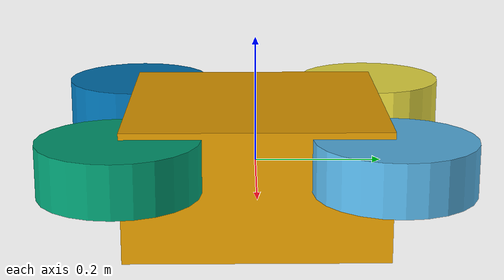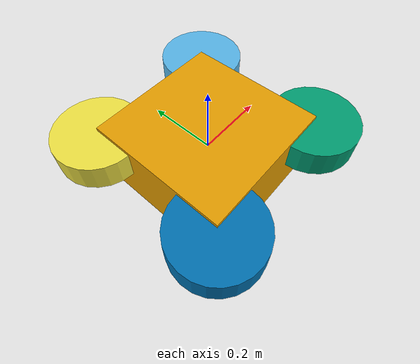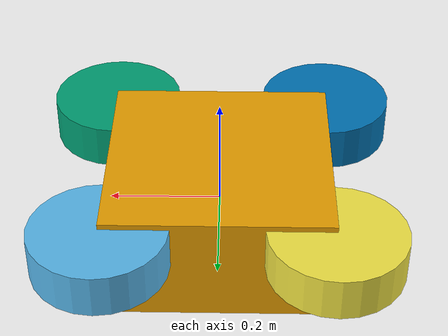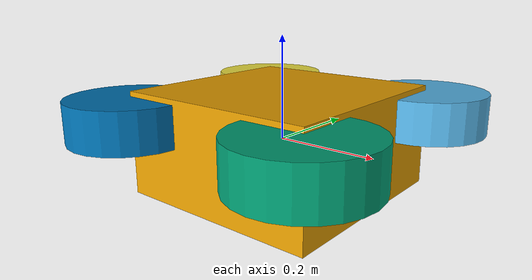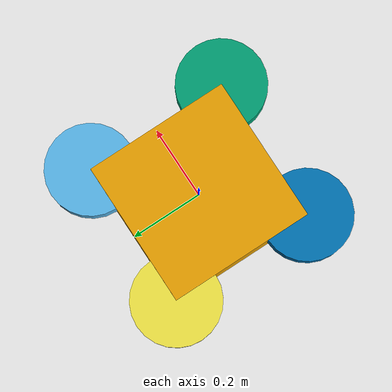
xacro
<?xml version='1.0'?>

<robot xmlns:xacro="http://www.ros.org/wiki/xacro" name="exort">
  <!-- Chassis -->
  <link name="chassis">
    <inertial>
      <origin xyz="0 0 0.1" rpy="0 0 0"/>
      <mass value="1.0"/>
      <inertia ixx="0.0167" ixy="0.0" ixz="0.0" iyy="0.0167" iyz="0.0" izz="0.0267"/>
    </inertial>
    <visual>
      <origin xyz="0 0 0" rpy="0 0 0"/>
      <geometry>
        <box size="0.4 0.4 0.2"/>
      </geometry>
    </visual>
    <collision>
      <origin xyz="0 0 0" rpy="0 0 0"/>
      <geometry>
        <box size="0.4 0.4 0.2"/>
      </geometry>
    </collision>
  </link>

  <xacro:macro name="wheel" params="name x y">
    <link name="${name}">
      <inertial>
        <origin xyz="0 0 0" rpy="0 0 0"/>
        <mass value="0.1"/>
        <inertia ixx="0.0057" ixy="0.0" ixz="0.0" iyy="0.0057" iyz="0.0" izz="0.00072"/>
      </inertial>
      <visual>
        <origin xyz="0 0 0" rpy="0 0 0"/>
        <geometry>
          <cylinder radius="0.12" length="0.08"/>
        </geometry>
      </visual>
      <collision>
        <origin xyz="0 0 0" rpy="0 0 0"/>
        <geometry>
          <cylinder radius="0.12" length="0.08"/>
        </geometry>
      </collision>
    </link>

    <joint name="${name}_joint" type="revolute">
      <origin xyz="${x} ${y} 0.05" rpy="0 0 0"/>
      <parent link="chassis"/>
      <child link="${name}"/>
      <axis xyz="1 0 0"/>
    </joint>
  </xacro:macro>

  <!-- Wheels -->
  <xacro:wheel name="front_left_wheel" x="0.2" y="0.2"/>
  <xacro:wheel name="front_right_wheel" x="0.2" y="-0.2"/>
  <xacro:wheel name="back_left_wheel" x="-0.2" y="0.2"/>
  <xacro:wheel name="back_right_wheel" x="-0.2" y="-0.2"/>
</robot>
